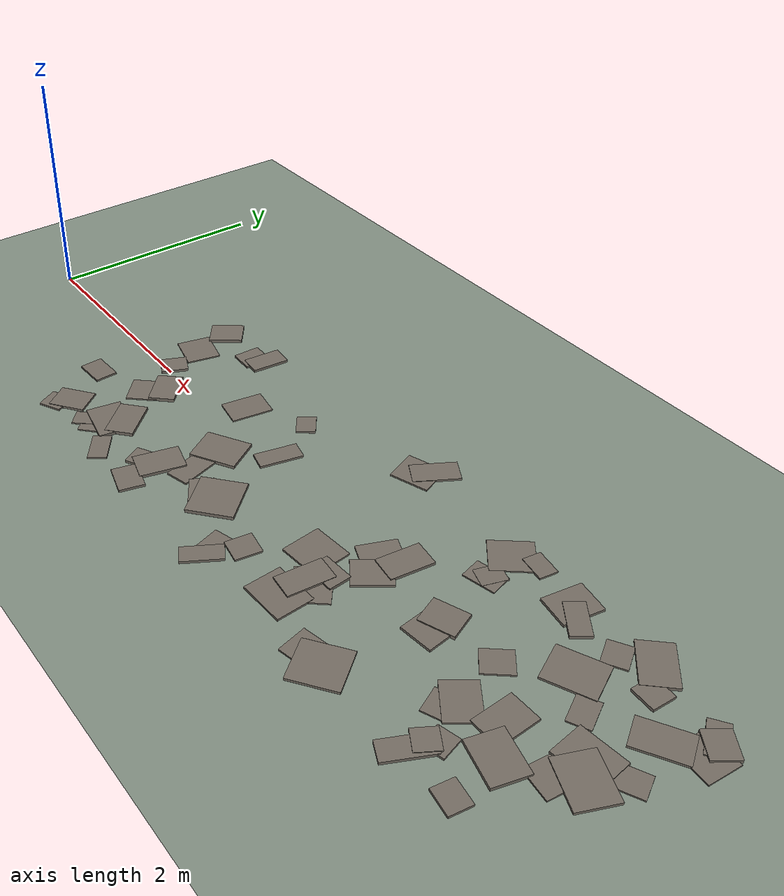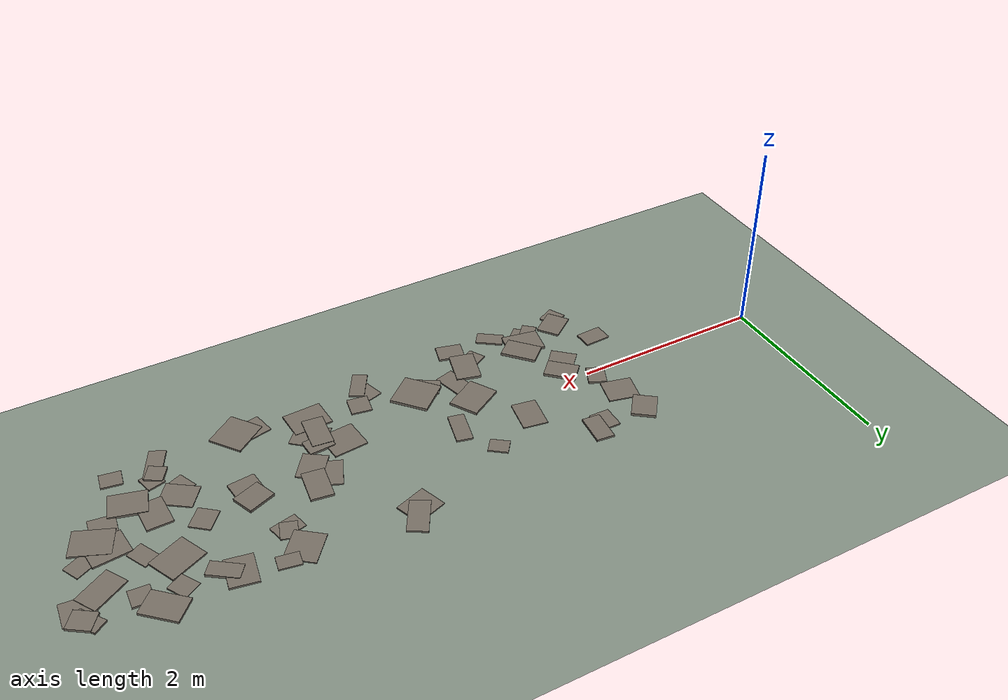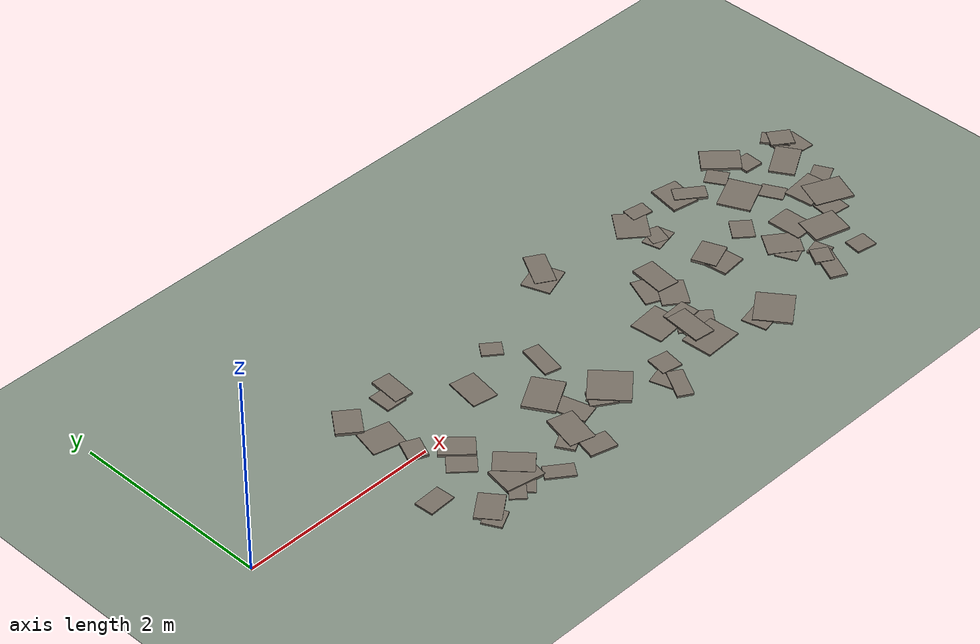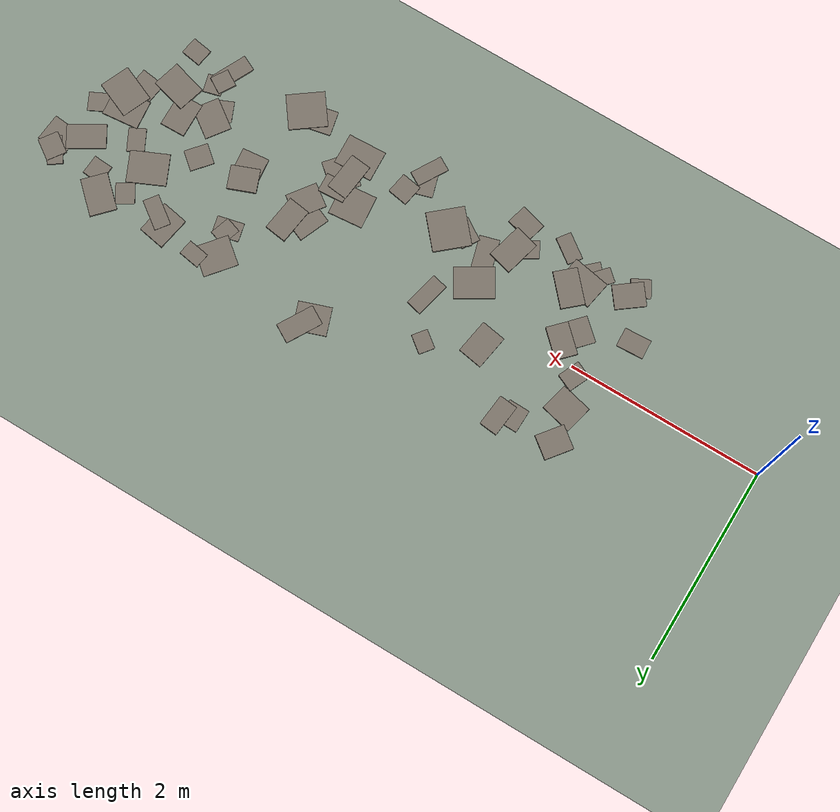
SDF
<?xml version="1.0"?>
<sdf version="1.10">
  <world name="hyperdog">
    <physics name="1ms" type="dart">
      <max_step_size>0.001</max_step_size>
      <real_time_factor>1.0</real_time_factor>
    </physics>
    <plugin filename="gz-sim-physics-system" name="gz::sim::systems::Physics"/>
    <plugin filename="gz-sim-user-commands-system" name="gz::sim::systems::UserCommands"/>
    <plugin filename="gz-sim-scene-broadcaster-system" name="gz::sim::systems::SceneBroadcaster"/>
    <plugin filename="gz-sim-sensors-system" name="gz::sim::systems::Sensors">
      <render_engine>ogre2</render_engine>
    </plugin>
    <plugin filename="gz-sim-imu-system" name="gz::sim::systems::Imu"/>
    <plugin filename="gz-sim-contact-system" name="gz::sim::systems::Contact"/>
    <plugin filename="gz-sim-apply-link-wrench-system" name="gz::sim::systems::ApplyLinkWrench"/>

    <gravity>0 0 -9.81</gravity>
    <scene>
      <ambient>0.6 0.6 0.6 1</ambient>
      <background>0.75 0.85 0.95 1</background>
      <grid>false</grid>
    </scene>
    <light type="directional" name="sun">
      <cast_shadows>true</cast_shadows>
      <pose>0 0 10 0 0 0</pose>
      <diffuse>0.9 0.9 0.9 1</diffuse>
      <specular>0.2 0.2 0.2 1</specular>
      <direction>-0.5 0.2 -0.9</direction>
    </light>

    <model name="ground_plane">
      <static>true</static>
      <link name="link">
        <collision name="collision">
          <geometry><plane><normal>0 0 1</normal><size>200 200</size></plane></geometry>
          <surface><friction><ode><mu>1.0</mu><mu2>1.0</mu2></ode></friction></surface>
        </collision>
        <visual name="visual">
          <geometry><plane><normal>0 0 1</normal><size>200 200</size></plane></geometry>
          <material><ambient>0.5 0.55 0.5 1</ambient><diffuse>0.5 0.55 0.5 1</diffuse></material>
        </visual>
      </link>
    </model>
    <model name="rock_0">
      <static>true</static>
      <pose>1.935 0.072 0.0115 0 0 1.148</pose>
      <link name="link">
        <collision name="collision"><geometry><box><size>0.231 0.188 0.0230</size></box></geometry>
          <surface><friction><ode><mu>1.0</mu><mu2>1.0</mu2></ode></friction></surface></collision>
        <visual name="visual"><geometry><box><size>0.231 0.188 0.0230</size></box></geometry>
          <material><ambient>0.45 0.42 0.38 1</ambient><diffuse>0.45 0.42 0.38 1</diffuse></material></visual>
      </link>
    </model>
    <model name="rock_1">
      <static>true</static>
      <pose>4.102 -0.860 0.0054 0 0 0.285</pose>
      <link name="link">
        <collision name="collision"><geometry><box><size>0.164 0.277 0.0107</size></box></geometry>
          <surface><friction><ode><mu>1.0</mu><mu2>1.0</mu2></ode></friction></surface></collision>
        <visual name="visual"><geometry><box><size>0.164 0.277 0.0107</size></box></geometry>
          <material><ambient>0.45 0.42 0.38 1</ambient><diffuse>0.45 0.42 0.38 1</diffuse></material></visual>
      </link>
    </model>
    <model name="rock_2">
      <static>true</static>
      <pose>2.839 0.255 0.0062 0 0 2.976</pose>
      <link name="link">
        <collision name="collision"><geometry><box><size>0.256 0.357 0.0125</size></box></geometry>
          <surface><friction><ode><mu>1.0</mu><mu2>1.0</mu2></ode></friction></surface></collision>
        <visual name="visual"><geometry><box><size>0.256 0.357 0.0125</size></box></geometry>
          <material><ambient>0.45 0.42 0.38 1</ambient><diffuse>0.45 0.42 0.38 1</diffuse></material></visual>
      </link>
    </model>
    <model name="rock_3">
      <static>true</static>
      <pose>1.779 0.717 0.0148 0 0 0.909</pose>
      <link name="link">
        <collision name="collision"><geometry><box><size>0.294 0.249 0.0295</size></box></geometry>
          <surface><friction><ode><mu>1.0</mu><mu2>1.0</mu2></ode></friction></surface></collision>
        <visual name="visual"><geometry><box><size>0.294 0.249 0.0295</size></box></geometry>
          <material><ambient>0.45 0.42 0.38 1</ambient><diffuse>0.45 0.42 0.38 1</diffuse></material></visual>
      </link>
    </model>
    <model name="rock_4">
      <static>true</static>
      <pose>6.397 -0.639 0.0081 0 0 1.826</pose>
      <link name="link">
        <collision name="collision"><geometry><box><size>0.186 0.179 0.0162</size></box></geometry>
          <surface><friction><ode><mu>1.0</mu><mu2>1.0</mu2></ode></friction></surface></collision>
        <visual name="visual"><geometry><box><size>0.186 0.179 0.0162</size></box></geometry>
          <material><ambient>0.45 0.42 0.38 1</ambient><diffuse>0.45 0.42 0.38 1</diffuse></material></visual>
      </link>
    </model>
    <model name="rock_5">
      <static>true</static>
      <pose>1.877 -0.881 0.0105 0 0 0.647</pose>
      <link name="link">
        <collision name="collision"><geometry><box><size>0.310 0.243 0.0210</size></box></geometry>
          <surface><friction><ode><mu>1.0</mu><mu2>1.0</mu2></ode></friction></surface></collision>
        <visual name="visual"><geometry><box><size>0.310 0.243 0.0210</size></box></geometry>
          <material><ambient>0.45 0.42 0.38 1</ambient><diffuse>0.45 0.42 0.38 1</diffuse></material></visual>
      </link>
    </model>
    <model name="rock_6">
      <static>true</static>
      <pose>5.013 -0.094 0.0081 0 0 0.941</pose>
      <link name="link">
        <collision name="collision"><geometry><box><size>0.320 0.257 0.0163</size></box></geometry>
          <surface><friction><ode><mu>1.0</mu><mu2>1.0</mu2></ode></friction></surface></collision>
        <visual name="visual"><geometry><box><size>0.320 0.257 0.0163</size></box></geometry>
          <material><ambient>0.45 0.42 0.38 1</ambient><diffuse>0.45 0.42 0.38 1</diffuse></material></visual>
      </link>
    </model>
    <model name="rock_7">
      <static>true</static>
      <pose>4.947 0.050 0.0074 0 0 2.748</pose>
      <link name="link">
        <collision name="collision"><geometry><box><size>0.349 0.325 0.0149</size></box></geometry>
          <surface><friction><ode><mu>1.0</mu><mu2>1.0</mu2></ode></friction></surface></collision>
        <visual name="visual"><geometry><box><size>0.349 0.325 0.0149</size></box></geometry>
          <material><ambient>0.45 0.42 0.38 1</ambient><diffuse>0.45 0.42 0.38 1</diffuse></material></visual>
      </link>
    </model>
    <model name="rock_8">
      <static>true</static>
      <pose>2.208 -0.164 0.0148 0 0 2.377</pose>
      <link name="link">
        <collision name="collision"><geometry><box><size>0.332 0.222 0.0296</size></box></geometry>
          <surface><friction><ode><mu>1.0</mu><mu2>1.0</mu2></ode></friction></surface></collision>
        <visual name="visual"><geometry><box><size>0.332 0.222 0.0296</size></box></geometry>
          <material><ambient>0.45 0.42 0.38 1</ambient><diffuse>0.45 0.42 0.38 1</diffuse></material></visual>
      </link>
    </model>
    <model name="rock_9">
      <static>true</static>
      <pose>5.509 0.529 0.0054 0 0 1.799</pose>
      <link name="link">
        <collision name="collision"><geometry><box><size>0.188 0.272 0.0108</size></box></geometry>
          <surface><friction><ode><mu>1.0</mu><mu2>1.0</mu2></ode></friction></surface></collision>
        <visual name="visual"><geometry><box><size>0.188 0.272 0.0108</size></box></geometry>
          <material><ambient>0.45 0.42 0.38 1</ambient><diffuse>0.45 0.42 0.38 1</diffuse></material></visual>
      </link>
    </model>
    <model name="rock_10">
      <static>true</static>
      <pose>5.066 0.160 0.0120 0 0 1.432</pose>
      <link name="link">
        <collision name="collision"><geometry><box><size>0.369 0.228 0.0239</size></box></geometry>
          <surface><friction><ode><mu>1.0</mu><mu2>1.0</mu2></ode></friction></surface></collision>
        <visual name="visual"><geometry><box><size>0.369 0.228 0.0239</size></box></geometry>
          <material><ambient>0.45 0.42 0.38 1</ambient><diffuse>0.45 0.42 0.38 1</diffuse></material></visual>
      </link>
    </model>
    <model name="rock_11">
      <static>true</static>
      <pose>5.485 -0.879 0.0097 0 0 2.203</pose>
      <link name="link">
        <collision name="collision"><geometry><box><size>0.360 0.386 0.0195</size></box></geometry>
          <surface><friction><ode><mu>1.0</mu><mu2>1.0</mu2></ode></friction></surface></collision>
        <visual name="visual"><geometry><box><size>0.360 0.386 0.0195</size></box></geometry>
          <material><ambient>0.45 0.42 0.38 1</ambient><diffuse>0.45 0.42 0.38 1</diffuse></material></visual>
      </link>
    </model>
    <model name="rock_12">
      <static>true</static>
      <pose>3.208 -0.228 0.0132 0 0 2.100</pose>
      <link name="link">
        <collision name="collision"><geometry><box><size>0.312 0.398 0.0264</size></box></geometry>
          <surface><friction><ode><mu>1.0</mu><mu2>1.0</mu2></ode></friction></surface></collision>
        <visual name="visual"><geometry><box><size>0.312 0.398 0.0264</size></box></geometry>
          <material><ambient>0.45 0.42 0.38 1</ambient><diffuse>0.45 0.42 0.38 1</diffuse></material></visual>
      </link>
    </model>
    <model name="rock_13">
      <static>true</static>
      <pose>2.203 -0.882 0.0067 0 0 2.412</pose>
      <link name="link">
        <collision name="collision"><geometry><box><size>0.156 0.265 0.0134</size></box></geometry>
          <surface><friction><ode><mu>1.0</mu><mu2>1.0</mu2></ode></friction></surface></collision>
        <visual name="visual"><geometry><box><size>0.156 0.265 0.0134</size></box></geometry>
          <material><ambient>0.45 0.42 0.38 1</ambient><diffuse>0.45 0.42 0.38 1</diffuse></material></visual>
      </link>
    </model>
    <model name="rock_14">
      <static>true</static>
      <pose>6.729 -0.839 0.0089 0 0 1.410</pose>
      <link name="link">
        <collision name="collision"><geometry><box><size>0.182 0.212 0.0178</size></box></geometry>
          <surface><friction><ode><mu>1.0</mu><mu2>1.0</mu2></ode></friction></surface></collision>
        <visual name="visual"><geometry><box><size>0.182 0.212 0.0178</size></box></geometry>
          <material><ambient>0.45 0.42 0.38 1</ambient><diffuse>0.45 0.42 0.38 1</diffuse></material></visual>
      </link>
    </model>
    <model name="rock_15">
      <static>true</static>
      <pose>6.684 -0.443 0.0132 0 0 1.304</pose>
      <link name="link">
        <collision name="collision"><geometry><box><size>0.287 0.371 0.0264</size></box></geometry>
          <surface><friction><ode><mu>1.0</mu><mu2>1.0</mu2></ode></friction></surface></collision>
        <visual name="visual"><geometry><box><size>0.287 0.371 0.0264</size></box></geometry>
          <material><ambient>0.45 0.42 0.38 1</ambient><diffuse>0.45 0.42 0.38 1</diffuse></material></visual>
      </link>
    </model>
    <model name="rock_16">
      <static>true</static>
      <pose>2.406 -0.648 0.0146 0 0 0.728</pose>
      <link name="link">
        <collision name="collision"><geometry><box><size>0.240 0.371 0.0292</size></box></geometry>
          <surface><friction><ode><mu>1.0</mu><mu2>1.0</mu2></ode></friction></surface></collision>
        <visual name="visual"><geometry><box><size>0.240 0.371 0.0292</size></box></geometry>
          <material><ambient>0.45 0.42 0.38 1</ambient><diffuse>0.45 0.42 0.38 1</diffuse></material></visual>
      </link>
    </model>
    <model name="rock_17">
      <static>true</static>
      <pose>3.076 -0.992 0.0109 0 0 1.315</pose>
      <link name="link">
        <collision name="collision"><geometry><box><size>0.208 0.271 0.0218</size></box></geometry>
          <surface><friction><ode><mu>1.0</mu><mu2>1.0</mu2></ode></friction></surface></collision>
        <visual name="visual"><geometry><box><size>0.208 0.271 0.0218</size></box></geometry>
          <material><ambient>0.45 0.42 0.38 1</ambient><diffuse>0.45 0.42 0.38 1</diffuse></material></visual>
      </link>
    </model>
    <model name="rock_18">
      <static>true</static>
      <pose>5.643 0.031 0.0145 0 0 1.939</pose>
      <link name="link">
        <collision name="collision"><geometry><box><size>0.242 0.292 0.0291</size></box></geometry>
          <surface><friction><ode><mu>1.0</mu><mu2>1.0</mu2></ode></friction></surface></collision>
        <visual name="visual"><geometry><box><size>0.242 0.292 0.0291</size></box></geometry>
          <material><ambient>0.45 0.42 0.38 1</ambient><diffuse>0.45 0.42 0.38 1</diffuse></material></visual>
      </link>
    </model>
    <model name="rock_19">
      <static>true</static>
      <pose>6.180 0.749 0.0140 0 0 2.505</pose>
      <link name="link">
        <collision name="collision"><geometry><box><size>0.319 0.163 0.0280</size></box></geometry>
          <surface><friction><ode><mu>1.0</mu><mu2>1.0</mu2></ode></friction></surface></collision>
        <visual name="visual"><geometry><box><size>0.319 0.163 0.0280</size></box></geometry>
          <material><ambient>0.45 0.42 0.38 1</ambient><diffuse>0.45 0.42 0.38 1</diffuse></material></visual>
      </link>
    </model>
    <model name="rock_20">
      <static>true</static>
      <pose>5.306 -0.876 0.0060 0 0 0.211</pose>
      <link name="link">
        <collision name="collision"><geometry><box><size>0.248 0.250 0.0121</size></box></geometry>
          <surface><friction><ode><mu>1.0</mu><mu2>1.0</mu2></ode></friction></surface></collision>
        <visual name="visual"><geometry><box><size>0.248 0.250 0.0121</size></box></geometry>
          <material><ambient>0.45 0.42 0.38 1</ambient><diffuse>0.45 0.42 0.38 1</diffuse></material></visual>
      </link>
    </model>
    <model name="rock_21">
      <static>true</static>
      <pose>1.815 -1.000 0.0084 0 0 0.475</pose>
      <link name="link">
        <collision name="collision"><geometry><box><size>0.202 0.191 0.0168</size></box></geometry>
          <surface><friction><ode><mu>1.0</mu><mu2>1.0</mu2></ode></friction></surface></collision>
        <visual name="visual"><geometry><box><size>0.202 0.191 0.0168</size></box></geometry>
          <material><ambient>0.45 0.42 0.38 1</ambient><diffuse>0.45 0.42 0.38 1</diffuse></material></visual>
      </link>
    </model>
    <model name="rock_22">
      <static>true</static>
      <pose>6.746 0.228 0.0053 0 0 0.466</pose>
      <link name="link">
        <collision name="collision"><geometry><box><size>0.175 0.241 0.0105</size></box></geometry>
          <surface><friction><ode><mu>1.0</mu><mu2>1.0</mu2></ode></friction></surface></collision>
        <visual name="visual"><geometry><box><size>0.175 0.241 0.0105</size></box></geometry>
          <material><ambient>0.45 0.42 0.38 1</ambient><diffuse>0.45 0.42 0.38 1</diffuse></material></visual>
      </link>
    </model>
    <model name="rock_23">
      <static>true</static>
      <pose>2.237 0.698 0.0086 0 0 3.118</pose>
      <link name="link">
        <collision name="collision"><geometry><box><size>0.213 0.237 0.0173</size></box></geometry>
          <surface><friction><ode><mu>1.0</mu><mu2>1.0</mu2></ode></friction></surface></collision>
        <visual name="visual"><geometry><box><size>0.213 0.237 0.0173</size></box></geometry>
          <material><ambient>0.45 0.42 0.38 1</ambient><diffuse>0.45 0.42 0.38 1</diffuse></material></visual>
      </link>
    </model>
    <model name="rock_24">
      <static>true</static>
      <pose>2.113 -0.315 0.0059 0 0 0.831</pose>
      <link name="link">
        <collision name="collision"><geometry><box><size>0.266 0.271 0.0117</size></box></geometry>
          <surface><friction><ode><mu>1.0</mu><mu2>1.0</mu2></ode></friction></surface></collision>
        <visual name="visual"><geometry><box><size>0.266 0.271 0.0117</size></box></geometry>
          <material><ambient>0.45 0.42 0.38 1</ambient><diffuse>0.45 0.42 0.38 1</diffuse></material></visual>
      </link>
    </model>
    <model name="rock_25">
      <static>true</static>
      <pose>7.206 0.057 0.0052 0 0 0.460</pose>
      <link name="link">
        <collision name="collision"><geometry><box><size>0.357 0.190 0.0105</size></box></geometry>
          <surface><friction><ode><mu>1.0</mu><mu2>1.0</mu2></ode></friction></surface></collision>
        <visual name="visual"><geometry><box><size>0.357 0.190 0.0105</size></box></geometry>
          <material><ambient>0.45 0.42 0.38 1</ambient><diffuse>0.45 0.42 0.38 1</diffuse></material></visual>
      </link>
    </model>
    <model name="rock_26">
      <static>true</static>
      <pose>7.371 0.727 0.0103 0 0 2.186</pose>
      <link name="link">
        <collision name="collision"><geometry><box><size>0.286 0.157 0.0206</size></box></geometry>
          <surface><friction><ode><mu>1.0</mu><mu2>1.0</mu2></ode></friction></surface></collision>
        <visual name="visual"><geometry><box><size>0.286 0.157 0.0206</size></box></geometry>
          <material><ambient>0.45 0.42 0.38 1</ambient><diffuse>0.45 0.42 0.38 1</diffuse></material></visual>
      </link>
    </model>
    <model name="rock_27">
      <static>true</static>
      <pose>6.132 0.065 0.0067 0 0 2.446</pose>
      <link name="link">
        <collision name="collision"><geometry><box><size>0.215 0.242 0.0133</size></box></geometry>
          <surface><friction><ode><mu>1.0</mu><mu2>1.0</mu2></ode></friction></surface></collision>
        <visual name="visual"><geometry><box><size>0.215 0.242 0.0133</size></box></geometry>
          <material><ambient>0.45 0.42 0.38 1</ambient><diffuse>0.45 0.42 0.38 1</diffuse></material></visual>
      </link>
    </model>
    <model name="rock_28">
      <static>true</static>
      <pose>7.410 0.705 0.0131 0 0 2.531</pose>
      <link name="link">
        <collision name="collision"><geometry><box><size>0.232 0.206 0.0262</size></box></geometry>
          <surface><friction><ode><mu>1.0</mu><mu2>1.0</mu2></ode></friction></surface></collision>
        <visual name="visual"><geometry><box><size>0.232 0.206 0.0262</size></box></geometry>
          <material><ambient>0.45 0.42 0.38 1</ambient><diffuse>0.45 0.42 0.38 1</diffuse></material></visual>
      </link>
    </model>
    <model name="rock_29">
      <static>true</static>
      <pose>4.606 -0.289 0.0073 0 0 0.091</pose>
      <link name="link">
        <collision name="collision"><geometry><box><size>0.355 0.335 0.0145</size></box></geometry>
          <surface><friction><ode><mu>1.0</mu><mu2>1.0</mu2></ode></friction></surface></collision>
        <visual name="visual"><geometry><box><size>0.355 0.335 0.0145</size></box></geometry>
          <material><ambient>0.45 0.42 0.38 1</ambient><diffuse>0.45 0.42 0.38 1</diffuse></material></visual>
      </link>
    </model>
    <model name="rock_30">
      <static>true</static>
      <pose>5.655 0.913 0.0076 0 0 1.404</pose>
      <link name="link">
        <collision name="collision"><geometry><box><size>0.157 0.220 0.0152</size></box></geometry>
          <surface><friction><ode><mu>1.0</mu><mu2>1.0</mu2></ode></friction></surface></collision>
        <visual name="visual"><geometry><box><size>0.157 0.220 0.0152</size></box></geometry>
          <material><ambient>0.45 0.42 0.38 1</ambient><diffuse>0.45 0.42 0.38 1</diffuse></material></visual>
      </link>
    </model>
    <model name="rock_31">
      <static>true</static>
      <pose>3.688 -0.559 0.0146 0 0 0.712</pose>
      <link name="link">
        <collision name="collision"><geometry><box><size>0.384 0.397 0.0291</size></box></geometry>
          <surface><friction><ode><mu>1.0</mu><mu2>1.0</mu2></ode></friction></surface></collision>
        <visual name="visual"><geometry><box><size>0.384 0.397 0.0291</size></box></geometry>
          <material><ambient>0.45 0.42 0.38 1</ambient><diffuse>0.45 0.42 0.38 1</diffuse></material></visual>
      </link>
    </model>
    <model name="rock_32">
      <static>true</static>
      <pose>6.902 0.681 0.0112 0 0 1.506</pose>
      <link name="link">
        <collision name="collision"><geometry><box><size>0.199 0.201 0.0225</size></box></geometry>
          <surface><friction><ode><mu>1.0</mu><mu2>1.0</mu2></ode></friction></surface></collision>
        <visual name="visual"><geometry><box><size>0.199 0.201 0.0225</size></box></geometry>
          <material><ambient>0.45 0.42 0.38 1</ambient><diffuse>0.45 0.42 0.38 1</diffuse></material></visual>
      </link>
    </model>
    <model name="rock_33">
      <static>true</static>
      <pose>5.464 0.820 0.0058 0 0 2.456</pose>
      <link name="link">
        <collision name="collision"><geometry><box><size>0.313 0.350 0.0117</size></box></geometry>
          <surface><friction><ode><mu>1.0</mu><mu2>1.0</mu2></ode></friction></surface></collision>
        <visual name="visual"><geometry><box><size>0.313 0.350 0.0117</size></box></geometry>
          <material><ambient>0.45 0.42 0.38 1</ambient><diffuse>0.45 0.42 0.38 1</diffuse></material></visual>
      </link>
    </model>
    <model name="rock_34">
      <static>true</static>
      <pose>6.235 -0.335 0.0068 0 0 2.515</pose>
      <link name="link">
        <collision name="collision"><geometry><box><size>0.338 0.270 0.0136</size></box></geometry>
          <surface><friction><ode><mu>1.0</mu><mu2>1.0</mu2></ode></friction></surface></collision>
        <visual name="visual"><geometry><box><size>0.338 0.270 0.0136</size></box></geometry>
          <material><ambient>0.45 0.42 0.38 1</ambient><diffuse>0.45 0.42 0.38 1</diffuse></material></visual>
      </link>
    </model>
    <model name="rock_35">
      <static>true</static>
      <pose>7.181 0.450 0.0090 0 0 0.534</pose>
      <link name="link">
        <collision name="collision"><geometry><box><size>0.393 0.249 0.0180</size></box></geometry>
          <surface><friction><ode><mu>1.0</mu><mu2>1.0</mu2></ode></friction></surface></collision>
        <visual name="visual"><geometry><box><size>0.393 0.249 0.0180</size></box></geometry>
          <material><ambient>0.45 0.42 0.38 1</ambient><diffuse>0.45 0.42 0.38 1</diffuse></material></visual>
      </link>
    </model>
    <model name="rock_36">
      <static>true</static>
      <pose>6.339 -0.708 0.0140 0 0 2.595</pose>
      <link name="link">
        <collision name="collision"><geometry><box><size>0.182 0.188 0.0281</size></box></geometry>
          <surface><friction><ode><mu>1.0</mu><mu2>1.0</mu2></ode></friction></surface></collision>
        <visual name="visual"><geometry><box><size>0.182 0.188 0.0281</size></box></geometry>
          <material><ambient>0.45 0.42 0.38 1</ambient><diffuse>0.45 0.42 0.38 1</diffuse></material></visual>
      </link>
    </model>
    <model name="rock_37">
      <static>true</static>
      <pose>4.792 -0.738 0.0085 0 0 0.045</pose>
      <link name="link">
        <collision name="collision"><geometry><box><size>0.395 0.314 0.0170</size></box></geometry>
          <surface><friction><ode><mu>1.0</mu><mu2>1.0</mu2></ode></friction></surface></collision>
        <visual name="visual"><geometry><box><size>0.395 0.314 0.0170</size></box></geometry>
          <material><ambient>0.45 0.42 0.38 1</ambient><diffuse>0.45 0.42 0.38 1</diffuse></material></visual>
      </link>
    </model>
    <model name="rock_38">
      <static>true</static>
      <pose>7.102 -0.132 0.0103 0 0 2.737</pose>
      <link name="link">
        <collision name="collision"><geometry><box><size>0.393 0.312 0.0205</size></box></geometry>
          <surface><friction><ode><mu>1.0</mu><mu2>1.0</mu2></ode></friction></surface></collision>
        <visual name="visual"><geometry><box><size>0.393 0.312 0.0205</size></box></geometry>
          <material><ambient>0.45 0.42 0.38 1</ambient><diffuse>0.45 0.42 0.38 1</diffuse></material></visual>
      </link>
    </model>
    <model name="rock_39">
      <static>true</static>
      <pose>3.258 -0.519 0.0075 0 0 1.841</pose>
      <link name="link">
        <collision name="collision"><geometry><box><size>0.357 0.203 0.0150</size></box></geometry>
          <surface><friction><ode><mu>1.0</mu><mu2>1.0</mu2></ode></friction></surface></collision>
        <visual name="visual"><geometry><box><size>0.357 0.203 0.0150</size></box></geometry>
          <material><ambient>0.45 0.42 0.38 1</ambient><diffuse>0.45 0.42 0.38 1</diffuse></material></visual>
      </link>
    </model>
    <model name="rock_40">
      <static>true</static>
      <pose>6.960 -0.292 0.0063 0 0 1.439</pose>
      <link name="link">
        <collision name="collision"><geometry><box><size>0.215 0.255 0.0126</size></box></geometry>
          <surface><friction><ode><mu>1.0</mu><mu2>1.0</mu2></ode></friction></surface></collision>
        <visual name="visual"><geometry><box><size>0.215 0.255 0.0126</size></box></geometry>
          <material><ambient>0.45 0.42 0.38 1</ambient><diffuse>0.45 0.42 0.38 1</diffuse></material></visual>
      </link>
    </model>
    <model name="rock_41">
      <static>true</static>
      <pose>7.006 0.003 0.0092 0 0 1.670</pose>
      <link name="link">
        <collision name="collision"><geometry><box><size>0.296 0.376 0.0184</size></box></geometry>
          <surface><friction><ode><mu>1.0</mu><mu2>1.0</mu2></ode></friction></surface></collision>
        <visual name="visual"><geometry><box><size>0.296 0.376 0.0184</size></box></geometry>
          <material><ambient>0.45 0.42 0.38 1</ambient><diffuse>0.45 0.42 0.38 1</diffuse></material></visual>
      </link>
    </model>
    <model name="rock_42">
      <static>true</static>
      <pose>2.599 -0.992 0.0094 0 0 2.509</pose>
      <link name="link">
        <collision name="collision"><geometry><box><size>0.281 0.155 0.0188</size></box></geometry>
          <surface><friction><ode><mu>1.0</mu><mu2>1.0</mu2></ode></friction></surface></collision>
        <visual name="visual"><geometry><box><size>0.281 0.155 0.0188</size></box></geometry>
          <material><ambient>0.45 0.42 0.38 1</ambient><diffuse>0.45 0.42 0.38 1</diffuse></material></visual>
      </link>
    </model>
    <model name="rock_43">
      <static>true</static>
      <pose>4.839 -0.348 0.0123 0 0 1.628</pose>
      <link name="link">
        <collision name="collision"><geometry><box><size>0.193 0.268 0.0245</size></box></geometry>
          <surface><friction><ode><mu>1.0</mu><mu2>1.0</mu2></ode></friction></surface></collision>
        <visual name="visual"><geometry><box><size>0.193 0.268 0.0245</size></box></geometry>
          <material><ambient>0.45 0.42 0.38 1</ambient><diffuse>0.45 0.42 0.38 1</diffuse></material></visual>
      </link>
    </model>
    <model name="rock_44">
      <static>true</static>
      <pose>4.862 -0.503 0.0061 0 0 0.870</pose>
      <link name="link">
        <collision name="collision"><geometry><box><size>0.289 0.346 0.0121</size></box></geometry>
          <surface><friction><ode><mu>1.0</mu><mu2>1.0</mu2></ode></friction></surface></collision>
        <visual name="visual"><geometry><box><size>0.289 0.346 0.0121</size></box></geometry>
          <material><ambient>0.45 0.42 0.38 1</ambient><diffuse>0.45 0.42 0.38 1</diffuse></material></visual>
      </link>
    </model>
    <model name="rock_45">
      <static>true</static>
      <pose>6.060 0.825 0.0106 0 0 1.392</pose>
      <link name="link">
        <collision name="collision"><geometry><box><size>0.343 0.277 0.0212</size></box></geometry>
          <surface><friction><ode><mu>1.0</mu><mu2>1.0</mu2></ode></friction></surface></collision>
        <visual name="visual"><geometry><box><size>0.343 0.277 0.0212</size></box></geometry>
          <material><ambient>0.45 0.42 0.38 1</ambient><diffuse>0.45 0.42 0.38 1</diffuse></material></visual>
      </link>
    </model>
    <model name="rock_46">
      <static>true</static>
      <pose>5.656 -0.095 0.0101 0 0 1.675</pose>
      <link name="link">
        <collision name="collision"><geometry><box><size>0.303 0.276 0.0202</size></box></geometry>
          <surface><friction><ode><mu>1.0</mu><mu2>1.0</mu2></ode></friction></surface></collision>
        <visual name="visual"><geometry><box><size>0.303 0.276 0.0202</size></box></geometry>
          <material><ambient>0.45 0.42 0.38 1</ambient><diffuse>0.45 0.42 0.38 1</diffuse></material></visual>
      </link>
    </model>
    <model name="rock_47">
      <static>true</static>
      <pose>6.759 0.884 0.0120 0 0 0.815</pose>
      <link name="link">
        <collision name="collision"><geometry><box><size>0.270 0.385 0.0240</size></box></geometry>
          <surface><friction><ode><mu>1.0</mu><mu2>1.0</mu2></ode></friction></surface></collision>
        <visual name="visual"><geometry><box><size>0.270 0.385 0.0240</size></box></geometry>
          <material><ambient>0.45 0.42 0.38 1</ambient><diffuse>0.45 0.42 0.38 1</diffuse></material></visual>
      </link>
    </model>
    <model name="rock_48">
      <static>true</static>
      <pose>2.323 -0.757 0.0134 0 0 1.388</pose>
      <link name="link">
        <collision name="collision"><geometry><box><size>0.290 0.386 0.0268</size></box></geometry>
          <surface><friction><ode><mu>1.0</mu><mu2>1.0</mu2></ode></friction></surface></collision>
        <visual name="visual"><geometry><box><size>0.290 0.386 0.0268</size></box></geometry>
          <material><ambient>0.45 0.42 0.38 1</ambient><diffuse>0.45 0.42 0.38 1</diffuse></material></visual>
      </link>
    </model>
    <model name="rock_49">
      <static>true</static>
      <pose>5.517 0.568 0.0057 0 0 2.817</pose>
      <link name="link">
        <collision name="collision"><geometry><box><size>0.168 0.210 0.0115</size></box></geometry>
          <surface><friction><ode><mu>1.0</mu><mu2>1.0</mu2></ode></friction></surface></collision>
        <visual name="visual"><geometry><box><size>0.168 0.210 0.0115</size></box></geometry>
          <material><ambient>0.45 0.42 0.38 1</ambient><diffuse>0.45 0.42 0.38 1</diffuse></material></visual>
      </link>
    </model>
    <model name="rock_50">
      <static>true</static>
      <pose>2.358 0.766 0.0116 0 0 3.038</pose>
      <link name="link">
        <collision name="collision"><geometry><box><size>0.189 0.329 0.0232</size></box></geometry>
          <surface><friction><ode><mu>1.0</mu><mu2>1.0</mu2></ode></friction></surface></collision>
        <visual name="visual"><geometry><box><size>0.189 0.329 0.0232</size></box></geometry>
          <material><ambient>0.45 0.42 0.38 1</ambient><diffuse>0.45 0.42 0.38 1</diffuse></material></visual>
      </link>
    </model>
    <model name="rock_51">
      <static>true</static>
      <pose>4.424 0.980 0.0090 0 0 2.614</pose>
      <link name="link">
        <collision name="collision"><geometry><box><size>0.205 0.388 0.0180</size></box></geometry>
          <surface><friction><ode><mu>1.0</mu><mu2>1.0</mu2></ode></friction></surface></collision>
        <visual name="visual"><geometry><box><size>0.205 0.388 0.0180</size></box></geometry>
          <material><ambient>0.45 0.42 0.38 1</ambient><diffuse>0.45 0.42 0.38 1</diffuse></material></visual>
      </link>
    </model>
    <model name="rock_52">
      <static>true</static>
      <pose>3.535 -0.609 0.0102 0 0 1.000</pose>
      <link name="link">
        <collision name="collision"><geometry><box><size>0.190 0.258 0.0203</size></box></geometry>
          <surface><friction><ode><mu>1.0</mu><mu2>1.0</mu2></ode></friction></surface></collision>
        <visual name="visual"><geometry><box><size>0.190 0.258 0.0203</size></box></geometry>
          <material><ambient>0.45 0.42 0.38 1</ambient><diffuse>0.45 0.42 0.38 1</diffuse></material></visual>
      </link>
    </model>
    <model name="rock_53">
      <static>true</static>
      <pose>4.143 -0.964 0.0105 0 0 1.041</pose>
      <link name="link">
        <collision name="collision"><geometry><box><size>0.331 0.155 0.0211</size></box></geometry>
          <surface><friction><ode><mu>1.0</mu><mu2>1.0</mu2></ode></friction></surface></collision>
        <visual name="visual"><geometry><box><size>0.331 0.155 0.0211</size></box></geometry>
          <material><ambient>0.45 0.42 0.38 1</ambient><diffuse>0.45 0.42 0.38 1</diffuse></material></visual>
      </link>
    </model>
    <model name="rock_54">
      <static>true</static>
      <pose>7.410 0.577 0.0056 0 0 3.051</pose>
      <link name="link">
        <collision name="collision"><geometry><box><size>0.306 0.278 0.0113</size></box></geometry>
          <surface><friction><ode><mu>1.0</mu><mu2>1.0</mu2></ode></friction></surface></collision>
        <visual name="visual"><geometry><box><size>0.306 0.278 0.0113</size></box></geometry>
          <material><ambient>0.45 0.42 0.38 1</ambient><diffuse>0.45 0.42 0.38 1</diffuse></material></visual>
      </link>
    </model>
    <model name="rock_55">
      <static>true</static>
      <pose>6.174 -0.459 0.0054 0 0 0.407</pose>
      <link name="link">
        <collision name="collision"><geometry><box><size>0.176 0.216 0.0108</size></box></geometry>
          <surface><friction><ode><mu>1.0</mu><mu2>1.0</mu2></ode></friction></surface></collision>
        <visual name="visual"><geometry><box><size>0.176 0.216 0.0108</size></box></geometry>
          <material><ambient>0.45 0.42 0.38 1</ambient><diffuse>0.45 0.42 0.38 1</diffuse></material></visual>
      </link>
    </model>
    <model name="rock_56">
      <static>true</static>
      <pose>3.052 -0.701 0.0132 0 0 2.886</pose>
      <link name="link">
        <collision name="collision"><geometry><box><size>0.256 0.378 0.0264</size></box></geometry>
          <surface><friction><ode><mu>1.0</mu><mu2>1.0</mu2></ode></friction></surface></collision>
        <visual name="visual"><geometry><box><size>0.256 0.378 0.0264</size></box></geometry>
          <material><ambient>0.45 0.42 0.38 1</ambient><diffuse>0.45 0.42 0.38 1</diffuse></material></visual>
      </link>
    </model>
    <model name="rock_57">
      <static>true</static>
      <pose>1.845 0.376 0.0059 0 0 1.335</pose>
      <link name="link">
        <collision name="collision"><geometry><box><size>0.293 0.325 0.0118</size></box></geometry>
          <surface><friction><ode><mu>1.0</mu><mu2>1.0</mu2></ode></friction></surface></collision>
        <visual name="visual"><geometry><box><size>0.293 0.325 0.0118</size></box></geometry>
          <material><ambient>0.45 0.42 0.38 1</ambient><diffuse>0.45 0.42 0.38 1</diffuse></material></visual>
      </link>
    </model>
    <model name="rock_58">
      <static>true</static>
      <pose>6.310 -0.833 0.0113 0 0 2.689</pose>
      <link name="link">
        <collision name="collision"><geometry><box><size>0.168 0.385 0.0227</size></box></geometry>
          <surface><friction><ode><mu>1.0</mu><mu2>1.0</mu2></ode></friction></surface></collision>
        <visual name="visual"><geometry><box><size>0.168 0.385 0.0227</size></box></geometry>
          <material><ambient>0.45 0.42 0.38 1</ambient><diffuse>0.45 0.42 0.38 1</diffuse></material></visual>
      </link>
    </model>
    <model name="rock_59">
      <static>true</static>
      <pose>3.535 0.106 0.0095 0 0 2.910</pose>
      <link name="link">
        <collision name="collision"><geometry><box><size>0.167 0.366 0.0191</size></box></geometry>
          <surface><friction><ode><mu>1.0</mu><mu2>1.0</mu2></ode></friction></surface></collision>
        <visual name="visual"><geometry><box><size>0.167 0.366 0.0191</size></box></geometry>
          <material><ambient>0.45 0.42 0.38 1</ambient><diffuse>0.45 0.42 0.38 1</diffuse></material></visual>
      </link>
    </model>
    <model name="rock_60">
      <static>true</static>
      <pose>2.931 -0.781 0.0103 0 0 0.507</pose>
      <link name="link">
        <collision name="collision"><geometry><box><size>0.217 0.182 0.0205</size></box></geometry>
          <surface><friction><ode><mu>1.0</mu><mu2>1.0</mu2></ode></friction></surface></collision>
        <visual name="visual"><geometry><box><size>0.217 0.182 0.0205</size></box></geometry>
          <material><ambient>0.45 0.42 0.38 1</ambient><diffuse>0.45 0.42 0.38 1</diffuse></material></visual>
      </link>
    </model>
    <model name="rock_61">
      <static>true</static>
      <pose>3.330 0.519 0.0081 0 0 0.910</pose>
      <link name="link">
        <collision name="collision"><geometry><box><size>0.163 0.200 0.0162</size></box></geometry>
          <surface><friction><ode><mu>1.0</mu><mu2>1.0</mu2></ode></friction></surface></collision>
        <visual name="visual"><geometry><box><size>0.163 0.200 0.0162</size></box></geometry>
          <material><ambient>0.45 0.42 0.38 1</ambient><diffuse>0.45 0.42 0.38 1</diffuse></material></visual>
      </link>
    </model>
    <model name="rock_62">
      <static>true</static>
      <pose>1.609 -0.499 0.0085 0 0 0.048</pose>
      <link name="link">
        <collision name="collision"><geometry><box><size>0.275 0.194 0.0169</size></box></geometry>
          <surface><friction><ode><mu>1.0</mu><mu2>1.0</mu2></ode></friction></surface></collision>
        <visual name="visual"><geometry><box><size>0.275 0.194 0.0169</size></box></geometry>
          <material><ambient>0.45 0.42 0.38 1</ambient><diffuse>0.45 0.42 0.38 1</diffuse></material></visual>
      </link>
    </model>
    <model name="rock_63">
      <static>true</static>
      <pose>4.349 0.869 0.0069 0 0 0.334</pose>
      <link name="link">
        <collision name="collision"><geometry><box><size>0.333 0.288 0.0138</size></box></geometry>
          <surface><friction><ode><mu>1.0</mu><mu2>1.0</mu2></ode></friction></surface></collision>
        <visual name="visual"><geometry><box><size>0.333 0.288 0.0138</size></box></geometry>
          <material><ambient>0.45 0.42 0.38 1</ambient><diffuse>0.45 0.42 0.38 1</diffuse></material></visual>
      </link>
    </model>
    <model name="rock_64">
      <static>true</static>
      <pose>6.508 -0.214 0.0100 0 0 1.591</pose>
      <link name="link">
        <collision name="collision"><geometry><box><size>0.355 0.258 0.0199</size></box></geometry>
          <surface><friction><ode><mu>1.0</mu><mu2>1.0</mu2></ode></friction></surface></collision>
        <visual name="visual"><geometry><box><size>0.355 0.258 0.0199</size></box></geometry>
          <material><ambient>0.45 0.42 0.38 1</ambient><diffuse>0.45 0.42 0.38 1</diffuse></material></visual>
      </link>
    </model>
    <model name="rock_65">
      <static>true</static>
      <pose>6.494 0.413 0.0084 0 0 1.997</pose>
      <link name="link">
        <collision name="collision"><geometry><box><size>0.322 0.396 0.0169</size></box></geometry>
          <surface><friction><ode><mu>1.0</mu><mu2>1.0</mu2></ode></friction></surface></collision>
        <visual name="visual"><geometry><box><size>0.322 0.396 0.0169</size></box></geometry>
          <material><ambient>0.45 0.42 0.38 1</ambient><diffuse>0.45 0.42 0.38 1</diffuse></material></visual>
      </link>
    </model>
    <model name="rock_66">
      <static>true</static>
      <pose>2.279 -0.859 0.0055 0 0 2.326</pose>
      <link name="link">
        <collision name="collision"><geometry><box><size>0.251 0.237 0.0111</size></box></geometry>
          <surface><friction><ode><mu>1.0</mu><mu2>1.0</mu2></ode></friction></surface></collision>
        <visual name="visual"><geometry><box><size>0.251 0.237 0.0111</size></box></geometry>
          <material><ambient>0.45 0.42 0.38 1</ambient><diffuse>0.45 0.42 0.38 1</diffuse></material></visual>
      </link>
    </model>
    <model name="rock_67">
      <static>true</static>
      <pose>6.548 0.741 0.0058 0 0 2.106</pose>
      <link name="link">
        <collision name="collision"><geometry><box><size>0.214 0.191 0.0117</size></box></geometry>
          <surface><friction><ode><mu>1.0</mu><mu2>1.0</mu2></ode></friction></surface></collision>
        <visual name="visual"><geometry><box><size>0.214 0.191 0.0117</size></box></geometry>
          <material><ambient>0.45 0.42 0.38 1</ambient><diffuse>0.45 0.42 0.38 1</diffuse></material></visual>
      </link>
    </model>
    <model name="rock_68">
      <static>true</static>
      <pose>4.257 -0.685 0.0079 0 0 1.400</pose>
      <link name="link">
        <collision name="collision"><geometry><box><size>0.220 0.211 0.0159</size></box></geometry>
          <surface><friction><ode><mu>1.0</mu><mu2>1.0</mu2></ode></friction></surface></collision>
        <visual name="visual"><geometry><box><size>0.220 0.211 0.0159</size></box></geometry>
          <material><ambient>0.45 0.42 0.38 1</ambient><diffuse>0.45 0.42 0.38 1</diffuse></material></visual>
      </link>
    </model>
    <model name="rock_69">
      <static>true</static>
      <pose>4.782 -0.511 0.0147 0 0 3.032</pose>
      <link name="link">
        <collision name="collision"><geometry><box><size>0.216 0.390 0.0295</size></box></geometry>
          <surface><friction><ode><mu>1.0</mu><mu2>1.0</mu2></ode></friction></surface></collision>
        <visual name="visual"><geometry><box><size>0.216 0.390 0.0295</size></box></geometry>
          <material><ambient>0.45 0.42 0.38 1</ambient><diffuse>0.45 0.42 0.38 1</diffuse></material></visual>
      </link>
    </model>
  </world>
</sdf>
